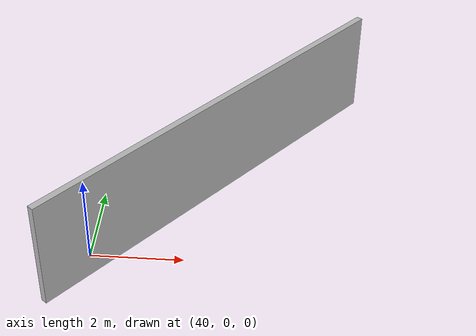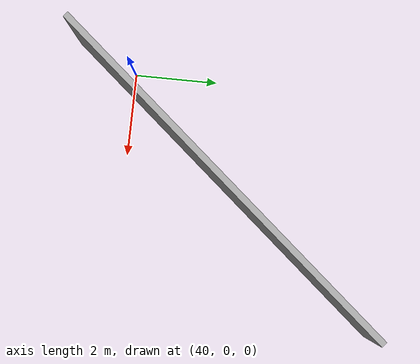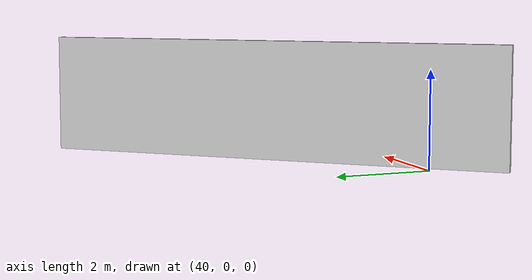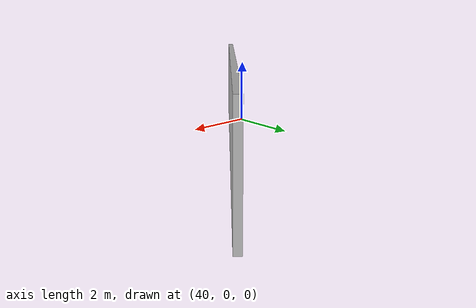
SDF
<?xml version="1.0" ?>
<sdf version="1.6">
  <model name="sps_1245">
    <pose frame="">0 0 0 0 -0 0</pose>
    <static>0</static>
    <self_collide>0</self_collide>
    <allow_auto_disable>0</allow_auto_disable>
    <link name="Wall624">
      <kinematic>0</kinematic>
      <gravity>1</gravity>
      <self_collide>0</self_collide>
      <collision name="collision">
        <geometry>
          <box>
            <size>9.98246 0.15 2.5</size>
          </box>
        </geometry>
        <pose frame="">0 0 0 0 -0 0</pose>
      </collision>
      <visual name="visual">
        <geometry>
          <box>
            <size>9.98246 0.15 2.5</size>
          </box>
        </geometry>
        <pose frame="">0 0 0 0 -0 0</pose>
        <cast_shadows>1</cast_shadows>
        <transparency>0.0</transparency>
      </visual>
      <pose frame="">42.5293 2.4073 1.25 0 0 -2.27424</pose>
    </link>
  </model>
</sdf>
